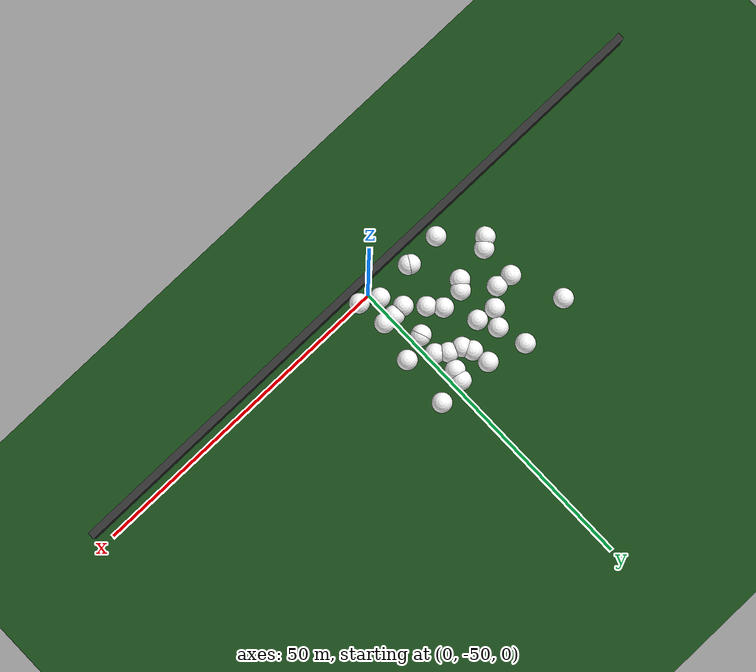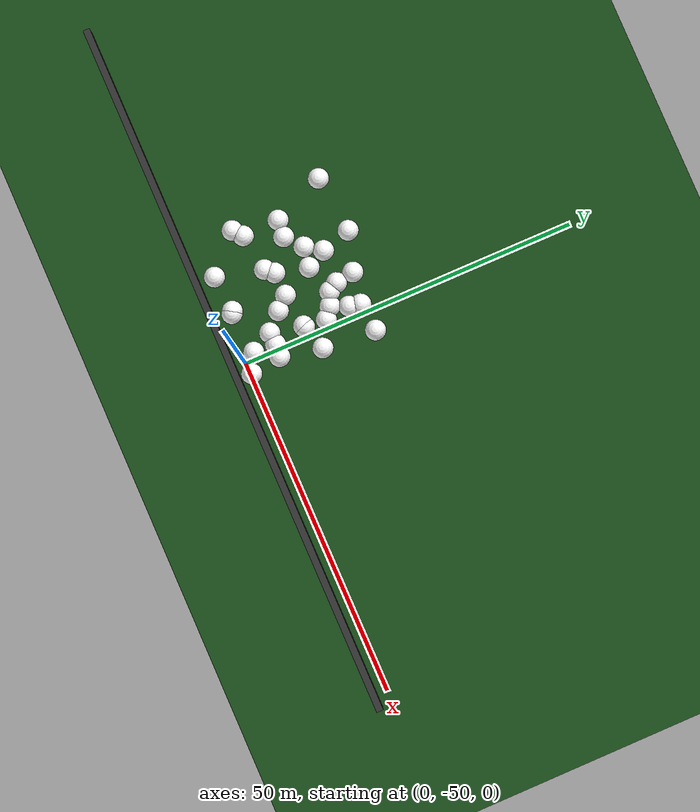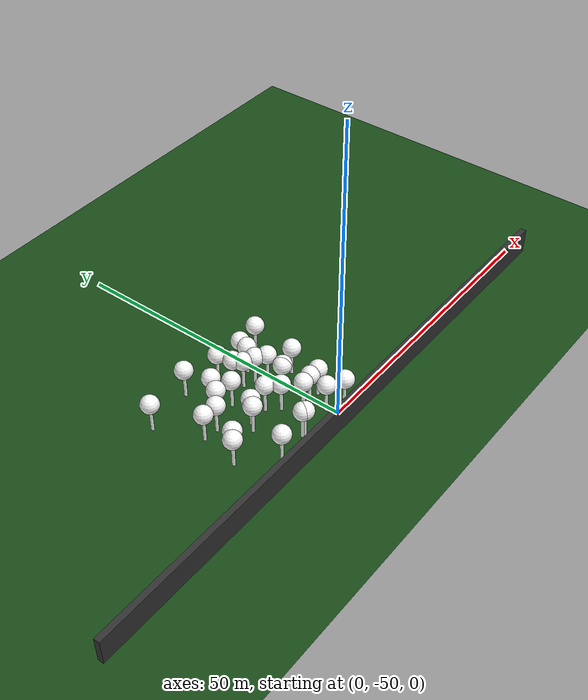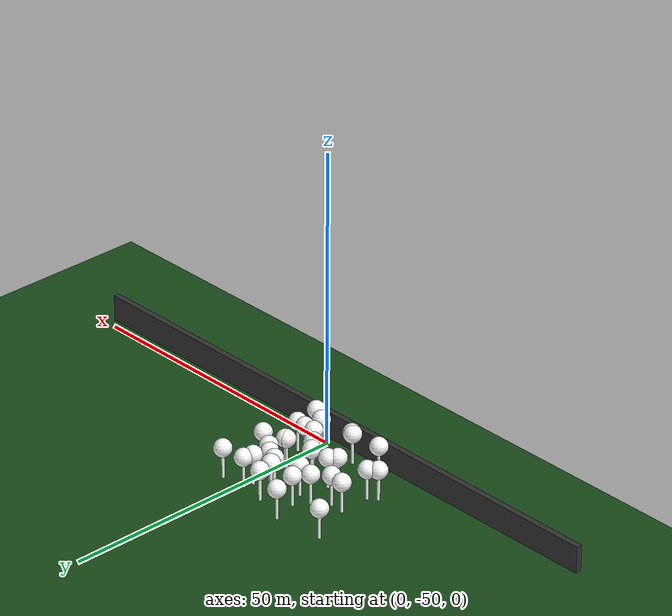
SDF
<sdf version="1.8">
 <world name="forest_world">
  <model name="tree_simple491">
   <static>1</static>
   <link name="link">
    <pose>0 0 0.1 0 -0 0</pose>
    <collision name="collision_trunk">
     <pose>0 0 2 0 -0 0</pose>
     <geometry><cylinder><radius>0.25</radius><length>4</length></cylinder></geometry>
    </collision>
    <collision name="collision_treetop">
     <pose>0 0 5.2 0 -0 0</pose>
     <geometry><sphere><radius>1.5</radius></sphere></geometry>
    </collision>
    <visual name="trunk">
     <pose>0 0 2 0 -0 0</pose>
     <geometry><cylinder><radius>0.25</radius><length>4</length></cylinder></geometry>
     <material>
      <ambient>0.5 0.5 0.5 1</ambient>
      <diffuse>1.0 1.0 1.0 1</diffuse>
      <specular>0.0 0.0 0.0 1</specular>
      <pbr>
       <metal>
        <albedo_map>../worlds/textures/tree_simple_trunk.jpg</albedo_map>
        <metalness>0.0</metalness>
        <roughness>0.8</roughness>
       </metal>
      </pbr>
     </material>
    </visual>
    <visual name="treetop">
     <pose>0 0 5.2 0 -0 0</pose>
     <geometry><sphere><radius>1.5</radius></sphere></geometry>
     <material>
      <ambient>0.5 0.5 0.5 1</ambient>
      <diffuse>1.0 1.0 1.0 1</diffuse>
      <specular>0.0 0.0 0.0 1</specular>
      <pbr>
       <metal>
        <albedo_map>../worlds/textures/tree_simple_treetop.jpg</albedo_map>
        <metalness>0.0</metalness>
        <roughness>0.9</roughness>
       </metal>
      </pbr>
     </material>
    </visual>
   </link>
   <pose>-12.3902503735 -49.1082665042 0 0 -0 0</pose>
  </model>
  <model name="tree_simple458">
   <static>1</static>
   <link name="link">
    <pose>0 0 0.1 0 -0 0</pose>
    <collision name="collision_trunk">
     <pose>0 0 2 0 -0 0</pose>
     <geometry><cylinder><radius>0.25</radius><length>4</length></cylinder></geometry>
    </collision>
    <collision name="collision_treetop">
     <pose>0 0 5.2 0 -0 0</pose>
     <geometry><sphere><radius>1.5</radius></sphere></geometry>
    </collision>
    <visual name="trunk">
     <pose>0 0 2 0 -0 0</pose>
     <geometry><cylinder><radius>0.25</radius><length>4</length></cylinder></geometry>
     <material>
      <ambient>0.5 0.5 0.5 1</ambient>
      <diffuse>1.0 1.0 1.0 1</diffuse>
      <specular>0.0 0.0 0.0 1</specular>
      <pbr>
       <metal>
        <albedo_map>../worlds/textures/tree_simple_trunk.jpg</albedo_map>
        <metalness>0.0</metalness>
        <roughness>0.8</roughness>
       </metal>
      </pbr>
     </material>
    </visual>
    <visual name="treetop">
     <pose>0 0 5.2 0 -0 0</pose>
     <geometry><sphere><radius>1.5</radius></sphere></geometry>
     <material>
      <ambient>0.5 0.5 0.5 1</ambient>
      <diffuse>1.0 1.0 1.0 1</diffuse>
      <specular>0.0 0.0 0.0 1</specular>
      <pbr>
       <metal>
        <albedo_map>../worlds/textures/tree_simple_treetop.jpg</albedo_map>
        <metalness>0.0</metalness>
        <roughness>0.9</roughness>
       </metal>
      </pbr>
     </material>
    </visual>
   </link>
   <pose>2.06613671761 -49.6676263837 0 0 -0 0</pose>
  </model>
  <model name="tree_simple454">
   <static>1</static>
   <link name="link">
    <pose>0 0 0.1 0 -0 0</pose>
    <collision name="collision_trunk">
     <pose>0 0 2 0 -0 0</pose>
     <geometry><cylinder><radius>0.25</radius><length>4</length></cylinder></geometry>
    </collision>
    <collision name="collision_treetop">
     <pose>0 0 5.2 0 -0 0</pose>
     <geometry><sphere><radius>1.5</radius></sphere></geometry>
    </collision>
    <visual name="trunk">
     <pose>0 0 2 0 -0 0</pose>
     <geometry><cylinder><radius>0.25</radius><length>4</length></cylinder></geometry>
     <material>
      <ambient>0.5 0.5 0.5 1</ambient>
      <diffuse>1.0 1.0 1.0 1</diffuse>
      <specular>0.0 0.0 0.0 1</specular>
      <pbr>
       <metal>
        <albedo_map>../worlds/textures/tree_simple_trunk.jpg</albedo_map>
        <metalness>0.0</metalness>
        <roughness>0.8</roughness>
       </metal>
      </pbr>
     </material>
    </visual>
    <visual name="treetop">
     <pose>0 0 5.2 0 -0 0</pose>
     <geometry><sphere><radius>1.5</radius></sphere></geometry>
     <material>
      <ambient>0.5 0.5 0.5 1</ambient>
      <diffuse>1.0 1.0 1.0 1</diffuse>
      <specular>0.0 0.0 0.0 1</specular>
      <pbr>
       <metal>
        <albedo_map>../worlds/textures/tree_simple_treetop.jpg</albedo_map>
        <metalness>0.0</metalness>
        <roughness>0.9</roughness>
       </metal>
      </pbr>
     </material>
    </visual>
   </link>
   <pose>-1.19781681146 -40.4261160925 0 0 -0 0</pose>
  </model>
  <model name="tree_simple447">
   <static>1</static>
   <link name="link">
    <pose>0 0 0.1 0 -0 0</pose>
    <collision name="collision_trunk">
     <pose>0 0 2 0 -0 0</pose>
     <geometry><cylinder><radius>0.25</radius><length>4</length></cylinder></geometry>
    </collision>
    <collision name="collision_treetop">
     <pose>0 0 5.2 0 -0 0</pose>
     <geometry><sphere><radius>1.5</radius></sphere></geometry>
    </collision>
    <visual name="trunk">
     <pose>0 0 2 0 -0 0</pose>
     <geometry><cylinder><radius>0.25</radius><length>4</length></cylinder></geometry>
     <material>
      <ambient>0.5 0.5 0.5 1</ambient>
      <diffuse>1.0 1.0 1.0 1</diffuse>
      <specular>0.0 0.0 0.0 1</specular>
      <pbr>
       <metal>
        <albedo_map>../worlds/textures/tree_simple_trunk.jpg</albedo_map>
        <metalness>0.0</metalness>
        <roughness>0.8</roughness>
       </metal>
      </pbr>
     </material>
    </visual>
    <visual name="treetop">
     <pose>0 0 5.2 0 -0 0</pose>
     <geometry><sphere><radius>1.5</radius></sphere></geometry>
     <material>
      <ambient>0.5 0.5 0.5 1</ambient>
      <diffuse>1.0 1.0 1.0 1</diffuse>
      <specular>0.0 0.0 0.0 1</specular>
      <pbr>
       <metal>
        <albedo_map>../worlds/textures/tree_simple_treetop.jpg</albedo_map>
        <metalness>0.0</metalness>
        <roughness>0.9</roughness>
       </metal>
      </pbr>
     </material>
    </visual>
   </link>
   <pose>-6.1509747219 -41.0422803315 0 0 -0 0</pose>
  </model>
  <model name="tree_simple408">
   <static>1</static>
   <link name="link">
    <pose>0 0 0.1 0 -0 0</pose>
    <collision name="collision_trunk">
     <pose>0 0 2 0 -0 0</pose>
     <geometry><cylinder><radius>0.25</radius><length>4</length></cylinder></geometry>
    </collision>
    <collision name="collision_treetop">
     <pose>0 0 5.2 0 -0 0</pose>
     <geometry><sphere><radius>1.5</radius></sphere></geometry>
    </collision>
    <visual name="trunk">
     <pose>0 0 2 0 -0 0</pose>
     <geometry><cylinder><radius>0.25</radius><length>4</length></cylinder></geometry>
     <material>
      <ambient>0.5 0.5 0.5 1</ambient>
      <diffuse>1.0 1.0 1.0 1</diffuse>
      <specular>0.0 0.0 0.0 1</specular>
      <pbr>
       <metal>
        <albedo_map>../worlds/textures/tree_simple_trunk.jpg</albedo_map>
        <metalness>0.0</metalness>
        <roughness>0.8</roughness>
       </metal>
      </pbr>
     </material>
    </visual>
    <visual name="treetop">
     <pose>0 0 5.2 0 -0 0</pose>
     <geometry><sphere><radius>1.5</radius></sphere></geometry>
     <material>
      <ambient>0.5 0.5 0.5 1</ambient>
      <diffuse>1.0 1.0 1.0 1</diffuse>
      <specular>0.0 0.0 0.0 1</specular>
      <pbr>
       <metal>
        <albedo_map>../worlds/textures/tree_simple_treetop.jpg</albedo_map>
        <metalness>0.0</metalness>
        <roughness>0.9</roughness>
       </metal>
      </pbr>
     </material>
    </visual>
   </link>
   <pose>-16.0994347695 -43.1531583175 0 0 -0 0</pose>
  </model>
  <model name="tree_simple397">
   <static>1</static>
   <link name="link">
    <pose>0 0 0.1 0 -0 0</pose>
    <collision name="collision_trunk">
     <pose>0 0 2 0 -0 0</pose>
     <geometry><cylinder><radius>0.25</radius><length>4</length></cylinder></geometry>
    </collision>
    <collision name="collision_treetop">
     <pose>0 0 5.2 0 -0 0</pose>
     <geometry><sphere><radius>1.5</radius></sphere></geometry>
    </collision>
    <visual name="trunk">
     <pose>0 0 2 0 -0 0</pose>
     <geometry><cylinder><radius>0.25</radius><length>4</length></cylinder></geometry>
     <material>
      <ambient>0.5 0.5 0.5 1</ambient>
      <diffuse>1.0 1.0 1.0 1</diffuse>
      <specular>0.0 0.0 0.0 1</specular>
      <pbr>
       <metal>
        <albedo_map>../worlds/textures/tree_simple_trunk.jpg</albedo_map>
        <metalness>0.0</metalness>
        <roughness>0.8</roughness>
       </metal>
      </pbr>
     </material>
    </visual>
    <visual name="treetop">
     <pose>0 0 5.2 0 -0 0</pose>
     <geometry><sphere><radius>1.5</radius></sphere></geometry>
     <material>
      <ambient>0.5 0.5 0.5 1</ambient>
      <diffuse>1.0 1.0 1.0 1</diffuse>
      <specular>0.0 0.0 0.0 1</specular>
      <pbr>
       <metal>
        <albedo_map>../worlds/textures/tree_simple_treetop.jpg</albedo_map>
        <metalness>0.0</metalness>
        <roughness>0.9</roughness>
       </metal>
      </pbr>
     </material>
    </visual>
   </link>
   <pose>-11.3370979395 -35.9987020926 0 0 -0 0</pose>
  </model>
  <model name="tree_simple382">
   <static>1</static>
   <link name="link">
    <pose>0 0 0.1 0 -0 0</pose>
    <collision name="collision_trunk">
     <pose>0 0 2 0 -0 0</pose>
     <geometry><cylinder><radius>0.25</radius><length>4</length></cylinder></geometry>
    </collision>
    <collision name="collision_treetop">
     <pose>0 0 5.2 0 -0 0</pose>
     <geometry><sphere><radius>1.5</radius></sphere></geometry>
    </collision>
    <visual name="trunk">
     <pose>0 0 2 0 -0 0</pose>
     <geometry><cylinder><radius>0.25</radius><length>4</length></cylinder></geometry>
     <material>
      <ambient>0.5 0.5 0.5 1</ambient>
      <diffuse>1.0 1.0 1.0 1</diffuse>
      <specular>0.0 0.0 0.0 1</specular>
      <pbr>
       <metal>
        <albedo_map>../worlds/textures/tree_simple_trunk.jpg</albedo_map>
        <metalness>0.0</metalness>
        <roughness>0.8</roughness>
       </metal>
      </pbr>
     </material>
    </visual>
    <visual name="treetop">
     <pose>0 0 5.2 0 -0 0</pose>
     <geometry><sphere><radius>1.5</radius></sphere></geometry>
     <material>
      <ambient>0.5 0.5 0.5 1</ambient>
      <diffuse>1.0 1.0 1.0 1</diffuse>
      <specular>0.0 0.0 0.0 1</specular>
      <pbr>
       <metal>
        <albedo_map>../worlds/textures/tree_simple_treetop.jpg</albedo_map>
        <metalness>0.0</metalness>
        <roughness>0.9</roughness>
       </metal>
      </pbr>
     </material>
    </visual>
   </link>
   <pose>-13.7339502639 -38.0385425652 0 0 -0 0</pose>
  </model>
  <model name="tree_simple368">
   <static>1</static>
   <link name="link">
    <pose>0 0 0.1 0 -0 0</pose>
    <collision name="collision_trunk">
     <pose>0 0 2 0 -0 0</pose>
     <geometry><cylinder><radius>0.25</radius><length>4</length></cylinder></geometry>
    </collision>
    <collision name="collision_treetop">
     <pose>0 0 5.2 0 -0 0</pose>
     <geometry><sphere><radius>1.5</radius></sphere></geometry>
    </collision>
    <visual name="trunk">
     <pose>0 0 2 0 -0 0</pose>
     <geometry><cylinder><radius>0.25</radius><length>4</length></cylinder></geometry>
     <material>
      <ambient>0.5 0.5 0.5 1</ambient>
      <diffuse>1.0 1.0 1.0 1</diffuse>
      <specular>0.0 0.0 0.0 1</specular>
      <pbr>
       <metal>
        <albedo_map>../worlds/textures/tree_simple_trunk.jpg</albedo_map>
        <metalness>0.0</metalness>
        <roughness>0.8</roughness>
       </metal>
      </pbr>
     </material>
    </visual>
    <visual name="treetop">
     <pose>0 0 5.2 0 -0 0</pose>
     <geometry><sphere><radius>1.5</radius></sphere></geometry>
     <material>
      <ambient>0.5 0.5 0.5 1</ambient>
      <diffuse>1.0 1.0 1.0 1</diffuse>
      <specular>0.0 0.0 0.0 1</specular>
      <pbr>
       <metal>
        <albedo_map>../worlds/textures/tree_simple_treetop.jpg</albedo_map>
        <metalness>0.0</metalness>
        <roughness>0.9</roughness>
       </metal>
      </pbr>
     </material>
    </visual>
   </link>
   <pose>-2.27490769551 -35.975306792 0 0 -0 0</pose>
  </model>
  <model name="tree_simple344">
   <static>1</static>
   <link name="link">
    <pose>0 0 0.1 0 -0 0</pose>
    <collision name="collision_trunk">
     <pose>0 0 2 0 -0 0</pose>
     <geometry><cylinder><radius>0.25</radius><length>4</length></cylinder></geometry>
    </collision>
    <collision name="collision_treetop">
     <pose>0 0 5.2 0 -0 0</pose>
     <geometry><sphere><radius>1.5</radius></sphere></geometry>
    </collision>
    <visual name="trunk">
     <pose>0 0 2 0 -0 0</pose>
     <geometry><cylinder><radius>0.25</radius><length>4</length></cylinder></geometry>
     <material>
      <ambient>0.5 0.5 0.5 1</ambient>
      <diffuse>1.0 1.0 1.0 1</diffuse>
      <specular>0.0 0.0 0.0 1</specular>
      <pbr>
       <metal>
        <albedo_map>../worlds/textures/tree_simple_trunk.jpg</albedo_map>
        <metalness>0.0</metalness>
        <roughness>0.8</roughness>
       </metal>
      </pbr>
     </material>
    </visual>
    <visual name="treetop">
     <pose>0 0 5.2 0 -0 0</pose>
     <geometry><sphere><radius>1.5</radius></sphere></geometry>
     <material>
      <ambient>0.5 0.5 0.5 1</ambient>
      <diffuse>1.0 1.0 1.0 1</diffuse>
      <specular>0.0 0.0 0.0 1</specular>
      <pbr>
       <metal>
        <albedo_map>../worlds/textures/tree_simple_treetop.jpg</albedo_map>
        <metalness>0.0</metalness>
        <roughness>0.9</roughness>
       </metal>
      </pbr>
     </material>
    </visual>
   </link>
   <pose>-1.01406181855 -40.356708741 0 0 -0 0</pose>
  </model>
  <model name="tree_simple334">
   <static>1</static>
   <link name="link">
    <pose>0 0 0.1 0 -0 0</pose>
    <collision name="collision_trunk">
     <pose>0 0 2 0 -0 0</pose>
     <geometry><cylinder><radius>0.25</radius><length>4</length></cylinder></geometry>
    </collision>
    <collision name="collision_treetop">
     <pose>0 0 5.2 0 -0 0</pose>
     <geometry><sphere><radius>1.5</radius></sphere></geometry>
    </collision>
    <visual name="trunk">
     <pose>0 0 2 0 -0 0</pose>
     <geometry><cylinder><radius>0.25</radius><length>4</length></cylinder></geometry>
     <material>
      <ambient>0.5 0.5 0.5 1</ambient>
      <diffuse>1.0 1.0 1.0 1</diffuse>
      <specular>0.0 0.0 0.0 1</specular>
      <pbr>
       <metal>
        <albedo_map>../worlds/textures/tree_simple_trunk.jpg</albedo_map>
        <metalness>0.0</metalness>
        <roughness>0.8</roughness>
       </metal>
      </pbr>
     </material>
    </visual>
    <visual name="treetop">
     <pose>0 0 5.2 0 -0 0</pose>
     <geometry><sphere><radius>1.5</radius></sphere></geometry>
     <material>
      <ambient>0.5 0.5 0.5 1</ambient>
      <diffuse>1.0 1.0 1.0 1</diffuse>
      <specular>0.0 0.0 0.0 1</specular>
      <pbr>
       <metal>
        <albedo_map>../worlds/textures/tree_simple_treetop.jpg</albedo_map>
        <metalness>0.0</metalness>
        <roughness>0.9</roughness>
       </metal>
      </pbr>
     </material>
    </visual>
   </link>
   <pose>-4.1581298625 -35.2035688942 0 0 -0 0</pose>
  </model>
  <model name="tree_simple305">
   <static>1</static>
   <link name="link">
    <pose>0 0 0.1 0 -0 0</pose>
    <collision name="collision_trunk">
     <pose>0 0 2 0 -0 0</pose>
     <geometry><cylinder><radius>0.25</radius><length>4</length></cylinder></geometry>
    </collision>
    <collision name="collision_treetop">
     <pose>0 0 5.2 0 -0 0</pose>
     <geometry><sphere><radius>1.5</radius></sphere></geometry>
    </collision>
    <visual name="trunk">
     <pose>0 0 2 0 -0 0</pose>
     <geometry><cylinder><radius>0.25</radius><length>4</length></cylinder></geometry>
     <material>
      <ambient>0.5 0.5 0.5 1</ambient>
      <diffuse>1.0 1.0 1.0 1</diffuse>
      <specular>0.0 0.0 0.0 1</specular>
      <pbr>
       <metal>
        <albedo_map>../worlds/textures/tree_simple_trunk.jpg</albedo_map>
        <metalness>0.0</metalness>
        <roughness>0.8</roughness>
       </metal>
      </pbr>
     </material>
    </visual>
    <visual name="treetop">
     <pose>0 0 5.2 0 -0 0</pose>
     <geometry><sphere><radius>1.5</radius></sphere></geometry>
     <material>
      <ambient>0.5 0.5 0.5 1</ambient>
      <diffuse>1.0 1.0 1.0 1</diffuse>
      <specular>0.0 0.0 0.0 1</specular>
      <pbr>
       <metal>
        <albedo_map>../worlds/textures/tree_simple_treetop.jpg</albedo_map>
        <metalness>0.0</metalness>
        <roughness>0.9</roughness>
       </metal>
      </pbr>
     </material>
    </visual>
   </link>
   <pose>-16.2250054706 -37.82270562 0 0 -0 0</pose>
  </model>
  <model name="tree_simple285">
   <static>1</static>
   <link name="link">
    <pose>0 0 0.1 0 -0 0</pose>
    <collision name="collision_trunk">
     <pose>0 0 2 0 -0 0</pose>
     <geometry><cylinder><radius>0.25</radius><length>4</length></cylinder></geometry>
    </collision>
    <collision name="collision_treetop">
     <pose>0 0 5.2 0 -0 0</pose>
     <geometry><sphere><radius>1.5</radius></sphere></geometry>
    </collision>
    <visual name="trunk">
     <pose>0 0 2 0 -0 0</pose>
     <geometry><cylinder><radius>0.25</radius><length>4</length></cylinder></geometry>
     <material>
      <ambient>0.5 0.5 0.5 1</ambient>
      <diffuse>1.0 1.0 1.0 1</diffuse>
      <specular>0.0 0.0 0.0 1</specular>
      <pbr>
       <metal>
        <albedo_map>../worlds/textures/tree_simple_trunk.jpg</albedo_map>
        <metalness>0.0</metalness>
        <roughness>0.8</roughness>
       </metal>
      </pbr>
     </material>
    </visual>
    <visual name="treetop">
     <pose>0 0 5.2 0 -0 0</pose>
     <geometry><sphere><radius>1.5</radius></sphere></geometry>
     <material>
      <ambient>0.5 0.5 0.5 1</ambient>
      <diffuse>1.0 1.0 1.0 1</diffuse>
      <specular>0.0 0.0 0.0 1</specular>
      <pbr>
       <metal>
        <albedo_map>../worlds/textures/tree_simple_treetop.jpg</albedo_map>
        <metalness>0.0</metalness>
        <roughness>0.9</roughness>
       </metal>
      </pbr>
     </material>
    </visual>
   </link>
   <pose>-0.758587547347 -37.1758267931 0 0 -0 0</pose>
  </model>
  <model name="tree_simple257">
   <static>1</static>
   <link name="link">
    <pose>0 0 0.1 0 -0 0</pose>
    <collision name="collision_trunk">
     <pose>0 0 2 0 -0 0</pose>
     <geometry><cylinder><radius>0.25</radius><length>4</length></cylinder></geometry>
    </collision>
    <collision name="collision_treetop">
     <pose>0 0 5.2 0 -0 0</pose>
     <geometry><sphere><radius>1.5</radius></sphere></geometry>
    </collision>
    <visual name="trunk">
     <pose>0 0 2 0 -0 0</pose>
     <geometry><cylinder><radius>0.25</radius><length>4</length></cylinder></geometry>
     <material>
      <ambient>0.5 0.5 0.5 1</ambient>
      <diffuse>1.0 1.0 1.0 1</diffuse>
      <specular>0.0 0.0 0.0 1</specular>
      <pbr>
       <metal>
        <albedo_map>../worlds/textures/tree_simple_trunk.jpg</albedo_map>
        <metalness>0.0</metalness>
        <roughness>0.8</roughness>
       </metal>
      </pbr>
     </material>
    </visual>
    <visual name="treetop">
     <pose>0 0 5.2 0 -0 0</pose>
     <geometry><sphere><radius>1.5</radius></sphere></geometry>
     <material>
      <ambient>0.5 0.5 0.5 1</ambient>
      <diffuse>1.0 1.0 1.0 1</diffuse>
      <specular>0.0 0.0 0.0 1</specular>
      <pbr>
       <metal>
        <albedo_map>../worlds/textures/tree_simple_treetop.jpg</albedo_map>
        <metalness>0.0</metalness>
        <roughness>0.9</roughness>
       </metal>
      </pbr>
     </material>
    </visual>
   </link>
   <pose>-17.4076670765 -44.276485645 0 0 -0 0</pose>
  </model>
  <model name="tree_simple227">
   <static>1</static>
   <link name="link">
    <pose>0 0 0.1 0 -0 0</pose>
    <collision name="collision_trunk">
     <pose>0 0 2 0 -0 0</pose>
     <geometry><cylinder><radius>0.25</radius><length>4</length></cylinder></geometry>
    </collision>
    <collision name="collision_treetop">
     <pose>0 0 5.2 0 -0 0</pose>
     <geometry><sphere><radius>1.5</radius></sphere></geometry>
    </collision>
    <visual name="trunk">
     <pose>0 0 2 0 -0 0</pose>
     <geometry><cylinder><radius>0.25</radius><length>4</length></cylinder></geometry>
     <material>
      <ambient>0.5 0.5 0.5 1</ambient>
      <diffuse>1.0 1.0 1.0 1</diffuse>
      <specular>0.0 0.0 0.0 1</specular>
      <pbr>
       <metal>
        <albedo_map>../worlds/textures/tree_simple_trunk.jpg</albedo_map>
        <metalness>0.0</metalness>
        <roughness>0.8</roughness>
       </metal>
      </pbr>
     </material>
    </visual>
    <visual name="treetop">
     <pose>0 0 5.2 0 -0 0</pose>
     <geometry><sphere><radius>1.5</radius></sphere></geometry>
     <material>
      <ambient>0.5 0.5 0.5 1</ambient>
      <diffuse>1.0 1.0 1.0 1</diffuse>
      <specular>0.0 0.0 0.0 1</specular>
      <pbr>
       <metal>
        <albedo_map>../worlds/textures/tree_simple_treetop.jpg</albedo_map>
        <metalness>0.0</metalness>
        <roughness>0.9</roughness>
       </metal>
      </pbr>
     </material>
    </visual>
   </link>
   <pose>-10.5932066879 -42.3249701995 0 0 -0 0</pose>
  </model>
  <model name="tree_simple223">
   <static>1</static>
   <link name="link">
    <pose>0 0 0.1 0 -0 0</pose>
    <collision name="collision_trunk">
     <pose>0 0 2 0 -0 0</pose>
     <geometry><cylinder><radius>0.25</radius><length>4</length></cylinder></geometry>
    </collision>
    <collision name="collision_treetop">
     <pose>0 0 5.2 0 -0 0</pose>
     <geometry><sphere><radius>1.5</radius></sphere></geometry>
    </collision>
    <visual name="trunk">
     <pose>0 0 2 0 -0 0</pose>
     <geometry><cylinder><radius>0.25</radius><length>4</length></cylinder></geometry>
     <material>
      <ambient>0.5 0.5 0.5 1</ambient>
      <diffuse>1.0 1.0 1.0 1</diffuse>
      <specular>0.0 0.0 0.0 1</specular>
      <pbr>
       <metal>
        <albedo_map>../worlds/textures/tree_simple_trunk.jpg</albedo_map>
        <metalness>0.0</metalness>
        <roughness>0.8</roughness>
       </metal>
      </pbr>
     </material>
    </visual>
    <visual name="treetop">
     <pose>0 0 5.2 0 -0 0</pose>
     <geometry><sphere><radius>1.5</radius></sphere></geometry>
     <material>
      <ambient>0.5 0.5 0.5 1</ambient>
      <diffuse>1.0 1.0 1.0 1</diffuse>
      <specular>0.0 0.0 0.0 1</specular>
      <pbr>
       <metal>
        <albedo_map>../worlds/textures/tree_simple_treetop.jpg</albedo_map>
        <metalness>0.0</metalness>
        <roughness>0.9</roughness>
       </metal>
      </pbr>
     </material>
    </visual>
   </link>
   <pose>-0.831429515675 -31.9083877979 0 0 -0 0</pose>
  </model>
  <model name="tree_simple166">
   <static>1</static>
   <link name="link">
    <pose>0 0 0.1 0 -0 0</pose>
    <collision name="collision_trunk">
     <pose>0 0 2 0 -0 0</pose>
     <geometry><cylinder><radius>0.25</radius><length>4</length></cylinder></geometry>
    </collision>
    <collision name="collision_treetop">
     <pose>0 0 5.2 0 -0 0</pose>
     <geometry><sphere><radius>1.5</radius></sphere></geometry>
    </collision>
    <visual name="trunk">
     <pose>0 0 2 0 -0 0</pose>
     <geometry><cylinder><radius>0.25</radius><length>4</length></cylinder></geometry>
     <material>
      <ambient>0.5 0.5 0.5 1</ambient>
      <diffuse>1.0 1.0 1.0 1</diffuse>
      <specular>0.0 0.0 0.0 1</specular>
      <pbr>
       <metal>
        <albedo_map>../worlds/textures/tree_simple_trunk.jpg</albedo_map>
        <metalness>0.0</metalness>
        <roughness>0.8</roughness>
       </metal>
      </pbr>
     </material>
    </visual>
    <visual name="treetop">
     <pose>0 0 5.2 0 -0 0</pose>
     <geometry><sphere><radius>1.5</radius></sphere></geometry>
     <material>
      <ambient>0.5 0.5 0.5 1</ambient>
      <diffuse>1.0 1.0 1.0 1</diffuse>
      <specular>0.0 0.0 0.0 1</specular>
      <pbr>
       <metal>
        <albedo_map>../worlds/textures/tree_simple_treetop.jpg</albedo_map>
        <metalness>0.0</metalness>
        <roughness>0.9</roughness>
       </metal>
      </pbr>
     </material>
    </visual>
   </link>
   <pose>-19.3381588268 -30.3399867983 0 0 -0 0</pose>
  </model>
  <model name="tree_simple143">
   <static>1</static>
   <link name="link">
    <pose>0 0 0.1 0 -0 0</pose>
    <collision name="collision_trunk">
     <pose>0 0 2 0 -0 0</pose>
     <geometry><cylinder><radius>0.25</radius><length>4</length></cylinder></geometry>
    </collision>
    <collision name="collision_treetop">
     <pose>0 0 5.2 0 -0 0</pose>
     <geometry><sphere><radius>1.5</radius></sphere></geometry>
    </collision>
    <visual name="trunk">
     <pose>0 0 2 0 -0 0</pose>
     <geometry><cylinder><radius>0.25</radius><length>4</length></cylinder></geometry>
     <material>
      <ambient>0.5 0.5 0.5 1</ambient>
      <diffuse>1.0 1.0 1.0 1</diffuse>
      <specular>0.0 0.0 0.0 1</specular>
      <pbr>
       <metal>
        <albedo_map>../worlds/textures/tree_simple_trunk.jpg</albedo_map>
        <metalness>0.0</metalness>
        <roughness>0.8</roughness>
       </metal>
      </pbr>
     </material>
    </visual>
    <visual name="treetop">
     <pose>0 0 5.2 0 -0 0</pose>
     <geometry><sphere><radius>1.5</radius></sphere></geometry>
     <material>
      <ambient>0.5 0.5 0.5 1</ambient>
      <diffuse>1.0 1.0 1.0 1</diffuse>
      <specular>0.0 0.0 0.0 1</specular>
      <pbr>
       <metal>
        <albedo_map>../worlds/textures/tree_simple_treetop.jpg</albedo_map>
        <metalness>0.0</metalness>
        <roughness>0.9</roughness>
       </metal>
      </pbr>
     </material>
    </visual>
   </link>
   <pose>-9.58958340045 -41.1660757416 0 0 -0 0</pose>
  </model>
  <model name="tree_simple142">
   <static>1</static>
   <link name="link">
    <pose>0 0 0.1 0 -0 0</pose>
    <collision name="collision_trunk">
     <pose>0 0 2 0 -0 0</pose>
     <geometry><cylinder><radius>0.25</radius><length>4</length></cylinder></geometry>
    </collision>
    <collision name="collision_treetop">
     <pose>0 0 5.2 0 -0 0</pose>
     <geometry><sphere><radius>1.5</radius></sphere></geometry>
    </collision>
    <visual name="trunk">
     <pose>0 0 2 0 -0 0</pose>
     <geometry><cylinder><radius>0.25</radius><length>4</length></cylinder></geometry>
     <material>
      <ambient>0.5 0.5 0.5 1</ambient>
      <diffuse>1.0 1.0 1.0 1</diffuse>
      <specular>0.0 0.0 0.0 1</specular>
      <pbr>
       <metal>
        <albedo_map>../worlds/textures/tree_simple_trunk.jpg</albedo_map>
        <metalness>0.0</metalness>
        <roughness>0.8</roughness>
       </metal>
      </pbr>
     </material>
    </visual>
    <visual name="treetop">
     <pose>0 0 5.2 0 -0 0</pose>
     <geometry><sphere><radius>1.5</radius></sphere></geometry>
     <material>
      <ambient>0.5 0.5 0.5 1</ambient>
      <diffuse>1.0 1.0 1.0 1</diffuse>
      <specular>0.0 0.0 0.0 1</specular>
      <pbr>
       <metal>
        <albedo_map>../worlds/textures/tree_simple_treetop.jpg</albedo_map>
        <metalness>0.0</metalness>
        <roughness>0.9</roughness>
       </metal>
      </pbr>
     </material>
    </visual>
   </link>
   <pose>2.70227648478 -39.1925835725 0 0 -0 0</pose>
  </model>
  <model name="tree_simple126">
   <static>1</static>
   <link name="link">
    <pose>0 0 0.1 0 -0 0</pose>
    <collision name="collision_trunk">
     <pose>0 0 2 0 -0 0</pose>
     <geometry><cylinder><radius>0.25</radius><length>4</length></cylinder></geometry>
    </collision>
    <collision name="collision_treetop">
     <pose>0 0 5.2 0 -0 0</pose>
     <geometry><sphere><radius>1.5</radius></sphere></geometry>
    </collision>
    <visual name="trunk">
     <pose>0 0 2 0 -0 0</pose>
     <geometry><cylinder><radius>0.25</radius><length>4</length></cylinder></geometry>
     <material>
      <ambient>0.5 0.5 0.5 1</ambient>
      <diffuse>1.0 1.0 1.0 1</diffuse>
      <specular>0.0 0.0 0.0 1</specular>
      <pbr>
       <metal>
        <albedo_map>../worlds/textures/tree_simple_trunk.jpg</albedo_map>
        <metalness>0.0</metalness>
        <roughness>0.8</roughness>
       </metal>
      </pbr>
     </material>
    </visual>
    <visual name="treetop">
     <pose>0 0 5.2 0 -0 0</pose>
     <geometry><sphere><radius>1.5</radius></sphere></geometry>
     <material>
      <ambient>0.5 0.5 0.5 1</ambient>
      <diffuse>1.0 1.0 1.0 1</diffuse>
      <specular>0.0 0.0 0.0 1</specular>
      <pbr>
       <metal>
        <albedo_map>../worlds/textures/tree_simple_treetop.jpg</albedo_map>
        <metalness>0.0</metalness>
        <roughness>0.9</roughness>
       </metal>
      </pbr>
     </material>
    </visual>
   </link>
   <pose>-8.40128153864 -36.4846341971 0 0 -0 0</pose>
  </model>
  <model name="tree_simple114">
   <static>1</static>
   <link name="link">
    <pose>0 0 0.1 0 -0 0</pose>
    <collision name="collision_trunk">
     <pose>0 0 2 0 -0 0</pose>
     <geometry><cylinder><radius>0.25</radius><length>4</length></cylinder></geometry>
    </collision>
    <collision name="collision_treetop">
     <pose>0 0 5.2 0 -0 0</pose>
     <geometry><sphere><radius>1.5</radius></sphere></geometry>
    </collision>
    <visual name="trunk">
     <pose>0 0 2 0 -0 0</pose>
     <geometry><cylinder><radius>0.25</radius><length>4</length></cylinder></geometry>
     <material>
      <ambient>0.5 0.5 0.5 1</ambient>
      <diffuse>1.0 1.0 1.0 1</diffuse>
      <specular>0.0 0.0 0.0 1</specular>
      <pbr>
       <metal>
        <albedo_map>../worlds/textures/tree_simple_trunk.jpg</albedo_map>
        <metalness>0.0</metalness>
        <roughness>0.8</roughness>
       </metal>
      </pbr>
     </material>
    </visual>
    <visual name="treetop">
     <pose>0 0 5.2 0 -0 0</pose>
     <geometry><sphere><radius>1.5</radius></sphere></geometry>
     <material>
      <ambient>0.5 0.5 0.5 1</ambient>
      <diffuse>1.0 1.0 1.0 1</diffuse>
      <specular>0.0 0.0 0.0 1</specular>
      <pbr>
       <metal>
        <albedo_map>../worlds/textures/tree_simple_treetop.jpg</albedo_map>
        <metalness>0.0</metalness>
        <roughness>0.9</roughness>
       </metal>
      </pbr>
     </material>
    </visual>
   </link>
   <pose>-2.17757547104 -45.1286714355 0 0 -0 0</pose>
  </model>
  <model name="tree_simple108">
   <static>1</static>
   <link name="link">
    <pose>0 0 0.1 0 -0 0</pose>
    <collision name="collision_trunk">
     <pose>0 0 2 0 -0 0</pose>
     <geometry><cylinder><radius>0.25</radius><length>4</length></cylinder></geometry>
    </collision>
    <collision name="collision_treetop">
     <pose>0 0 5.2 0 -0 0</pose>
     <geometry><sphere><radius>1.5</radius></sphere></geometry>
    </collision>
    <visual name="trunk">
     <pose>0 0 2 0 -0 0</pose>
     <geometry><cylinder><radius>0.25</radius><length>4</length></cylinder></geometry>
     <material>
      <ambient>0.5 0.5 0.5 1</ambient>
      <diffuse>1.0 1.0 1.0 1</diffuse>
      <specular>0.0 0.0 0.0 1</specular>
      <pbr>
       <metal>
        <albedo_map>../worlds/textures/tree_simple_trunk.jpg</albedo_map>
        <metalness>0.0</metalness>
        <roughness>0.8</roughness>
       </metal>
      </pbr>
     </material>
    </visual>
    <visual name="treetop">
     <pose>0 0 5.2 0 -0 0</pose>
     <geometry><sphere><radius>1.5</radius></sphere></geometry>
     <material>
      <ambient>0.5 0.5 0.5 1</ambient>
      <diffuse>1.0 1.0 1.0 1</diffuse>
      <specular>0.0 0.0 0.0 1</specular>
      <pbr>
       <metal>
        <albedo_map>../worlds/textures/tree_simple_treetop.jpg</albedo_map>
        <metalness>0.0</metalness>
        <roughness>0.9</roughness>
       </metal>
      </pbr>
     </material>
    </visual>
   </link>
   <pose>1.42931989254 -45.1660279448 0 0 -0 0</pose>
  </model>
  <model name="tree_simple107">
   <static>1</static>
   <link name="link">
    <pose>0 0 0.1 0 -0 0</pose>
    <collision name="collision_trunk">
     <pose>0 0 2 0 -0 0</pose>
     <geometry><cylinder><radius>0.25</radius><length>4</length></cylinder></geometry>
    </collision>
    <collision name="collision_treetop">
     <pose>0 0 5.2 0 -0 0</pose>
     <geometry><sphere><radius>1.5</radius></sphere></geometry>
    </collision>
    <visual name="trunk">
     <pose>0 0 2 0 -0 0</pose>
     <geometry><cylinder><radius>0.25</radius><length>4</length></cylinder></geometry>
     <material>
      <ambient>0.5 0.5 0.5 1</ambient>
      <diffuse>1.0 1.0 1.0 1</diffuse>
      <specular>0.0 0.0 0.0 1</specular>
      <pbr>
       <metal>
        <albedo_map>../worlds/textures/tree_simple_trunk.jpg</albedo_map>
        <metalness>0.0</metalness>
        <roughness>0.8</roughness>
       </metal>
      </pbr>
     </material>
    </visual>
    <visual name="treetop">
     <pose>0 0 5.2 0 -0 0</pose>
     <geometry><sphere><radius>1.5</radius></sphere></geometry>
     <material>
      <ambient>0.5 0.5 0.5 1</ambient>
      <diffuse>1.0 1.0 1.0 1</diffuse>
      <specular>0.0 0.0 0.0 1</specular>
      <pbr>
       <metal>
        <albedo_map>../worlds/textures/tree_simple_treetop.jpg</albedo_map>
        <metalness>0.0</metalness>
        <roughness>0.9</roughness>
       </metal>
      </pbr>
     </material>
    </visual>
   </link>
   <pose>-1.23057164025 -33.5425651467 0 0 -0 0</pose>
  </model>
  <model name="tree_simple102">
   <static>1</static>
   <link name="link">
    <pose>0 0 0.1 0 -0 0</pose>
    <collision name="collision_trunk">
     <pose>0 0 2 0 -0 0</pose>
     <geometry><cylinder><radius>0.25</radius><length>4</length></cylinder></geometry>
    </collision>
    <collision name="collision_treetop">
     <pose>0 0 5.2 0 -0 0</pose>
     <geometry><sphere><radius>1.5</radius></sphere></geometry>
    </collision>
    <visual name="trunk">
     <pose>0 0 2 0 -0 0</pose>
     <geometry><cylinder><radius>0.25</radius><length>4</length></cylinder></geometry>
     <material>
      <ambient>0.5 0.5 0.5 1</ambient>
      <diffuse>1.0 1.0 1.0 1</diffuse>
      <specular>0.0 0.0 0.0 1</specular>
      <pbr>
       <metal>
        <albedo_map>../worlds/textures/tree_simple_trunk.jpg</albedo_map>
        <metalness>0.0</metalness>
        <roughness>0.8</roughness>
       </metal>
      </pbr>
     </material>
    </visual>
    <visual name="treetop">
     <pose>0 0 5.2 0 -0 0</pose>
     <geometry><sphere><radius>1.5</radius></sphere></geometry>
     <material>
      <ambient>0.5 0.5 0.5 1</ambient>
      <diffuse>1.0 1.0 1.0 1</diffuse>
      <specular>0.0 0.0 0.0 1</specular>
      <pbr>
       <metal>
        <albedo_map>../worlds/textures/tree_simple_treetop.jpg</albedo_map>
        <metalness>0.0</metalness>
        <roughness>0.9</roughness>
       </metal>
      </pbr>
     </material>
    </visual>
   </link>
   <pose>-9.77870020383 -33.6944059178 0 0 -0 0</pose>
  </model>
  <model name="tree_simple90">
   <static>1</static>
   <link name="link">
    <pose>0 0 0.1 0 -0 0</pose>
    <collision name="collision_trunk">
     <pose>0 0 2 0 -0 0</pose>
     <geometry><cylinder><radius>0.25</radius><length>4</length></cylinder></geometry>
    </collision>
    <collision name="collision_treetop">
     <pose>0 0 5.2 0 -0 0</pose>
     <geometry><sphere><radius>1.5</radius></sphere></geometry>
    </collision>
    <visual name="trunk">
     <pose>0 0 2 0 -0 0</pose>
     <geometry><cylinder><radius>0.25</radius><length>4</length></cylinder></geometry>
     <material>
      <ambient>0.5 0.5 0.5 1</ambient>
      <diffuse>1.0 1.0 1.0 1</diffuse>
      <specular>0.0 0.0 0.0 1</specular>
      <pbr>
       <metal>
        <albedo_map>../worlds/textures/tree_simple_trunk.jpg</albedo_map>
        <metalness>0.0</metalness>
        <roughness>0.8</roughness>
       </metal>
      </pbr>
     </material>
    </visual>
    <visual name="treetop">
     <pose>0 0 5.2 0 -0 0</pose>
     <geometry><sphere><radius>1.5</radius></sphere></geometry>
     <material>
      <ambient>0.5 0.5 0.5 1</ambient>
      <diffuse>1.0 1.0 1.0 1</diffuse>
      <specular>0.0 0.0 0.0 1</specular>
      <pbr>
       <metal>
        <albedo_map>../worlds/textures/tree_simple_treetop.jpg</albedo_map>
        <metalness>0.0</metalness>
        <roughness>0.9</roughness>
       </metal>
      </pbr>
     </material>
    </visual>
   </link>
   <pose>-7.02064767481 -48.7132309456 0 0 -0 0</pose>
  </model>
  <model name="tree_simple87">
   <static>1</static>
   <link name="link">
    <pose>0 0 0.1 0 -0 0</pose>
    <collision name="collision_trunk">
     <pose>0 0 2 0 -0 0</pose>
     <geometry><cylinder><radius>0.25</radius><length>4</length></cylinder></geometry>
    </collision>
    <collision name="collision_treetop">
     <pose>0 0 5.2 0 -0 0</pose>
     <geometry><sphere><radius>1.5</radius></sphere></geometry>
    </collision>
    <visual name="trunk">
     <pose>0 0 2 0 -0 0</pose>
     <geometry><cylinder><radius>0.25</radius><length>4</length></cylinder></geometry>
     <material>
      <ambient>0.5 0.5 0.5 1</ambient>
      <diffuse>1.0 1.0 1.0 1</diffuse>
      <specular>0.0 0.0 0.0 1</specular>
      <pbr>
       <metal>
        <albedo_map>../worlds/textures/tree_simple_trunk.jpg</albedo_map>
        <metalness>0.0</metalness>
        <roughness>0.8</roughness>
       </metal>
      </pbr>
     </material>
    </visual>
    <visual name="treetop">
     <pose>0 0 5.2 0 -0 0</pose>
     <geometry><sphere><radius>1.5</radius></sphere></geometry>
     <material>
      <ambient>0.5 0.5 0.5 1</ambient>
      <diffuse>1.0 1.0 1.0 1</diffuse>
      <specular>0.0 0.0 0.0 1</specular>
      <pbr>
       <metal>
        <albedo_map>../worlds/textures/tree_simple_treetop.jpg</albedo_map>
        <metalness>0.0</metalness>
        <roughness>0.9</roughness>
       </metal>
      </pbr>
     </material>
    </visual>
   </link>
   <pose>-0.355859953676 -45.0259101281 0 0 -0 0</pose>
  </model>
  <model name="tree_simple58">
   <static>1</static>
   <link name="link">
    <pose>0 0 0.1 0 -0 0</pose>
    <collision name="collision_trunk">
     <pose>0 0 2 0 -0 0</pose>
     <geometry><cylinder><radius>0.25</radius><length>4</length></cylinder></geometry>
    </collision>
    <collision name="collision_treetop">
     <pose>0 0 5.2 0 -0 0</pose>
     <geometry><sphere><radius>1.5</radius></sphere></geometry>
    </collision>
    <visual name="trunk">
     <pose>0 0 2 0 -0 0</pose>
     <geometry><cylinder><radius>0.25</radius><length>4</length></cylinder></geometry>
     <material>
      <ambient>0.5 0.5 0.5 1</ambient>
      <diffuse>1.0 1.0 1.0 1</diffuse>
      <specular>0.0 0.0 0.0 1</specular>
      <pbr>
       <metal>
        <albedo_map>../worlds/textures/tree_simple_trunk.jpg</albedo_map>
        <metalness>0.0</metalness>
        <roughness>0.8</roughness>
       </metal>
      </pbr>
     </material>
    </visual>
    <visual name="treetop">
     <pose>0 0 5.2 0 -0 0</pose>
     <geometry><sphere><radius>1.5</radius></sphere></geometry>
     <material>
      <ambient>0.5 0.5 0.5 1</ambient>
      <diffuse>1.0 1.0 1.0 1</diffuse>
      <specular>0.0 0.0 0.0 1</specular>
      <pbr>
       <metal>
        <albedo_map>../worlds/textures/tree_simple_treetop.jpg</albedo_map>
        <metalness>0.0</metalness>
        <roughness>0.9</roughness>
       </metal>
      </pbr>
     </material>
    </visual>
   </link>
   <pose>-4.91491945588 -33.8245636998 0 0 -0 0</pose>
  </model>
  <model name="tree_simple51">
   <static>1</static>
   <link name="link">
    <pose>0 0 0.1 0 -0 0</pose>
    <collision name="collision_trunk">
     <pose>0 0 2 0 -0 0</pose>
     <geometry><cylinder><radius>0.25</radius><length>4</length></cylinder></geometry>
    </collision>
    <collision name="collision_treetop">
     <pose>0 0 5.2 0 -0 0</pose>
     <geometry><sphere><radius>1.5</radius></sphere></geometry>
    </collision>
    <visual name="trunk">
     <pose>0 0 2 0 -0 0</pose>
     <geometry><cylinder><radius>0.25</radius><length>4</length></cylinder></geometry>
     <material>
      <ambient>0.5 0.5 0.5 1</ambient>
      <diffuse>1.0 1.0 1.0 1</diffuse>
      <specular>0.0 0.0 0.0 1</specular>
      <pbr>
       <metal>
        <albedo_map>../worlds/textures/tree_simple_trunk.jpg</albedo_map>
        <metalness>0.0</metalness>
        <roughness>0.8</roughness>
       </metal>
      </pbr>
     </material>
    </visual>
    <visual name="treetop">
     <pose>0 0 5.2 0 -0 0</pose>
     <geometry><sphere><radius>1.5</radius></sphere></geometry>
     <material>
      <ambient>0.5 0.5 0.5 1</ambient>
      <diffuse>1.0 1.0 1.0 1</diffuse>
      <specular>0.0 0.0 0.0 1</specular>
      <pbr>
       <metal>
        <albedo_map>../worlds/textures/tree_simple_treetop.jpg</albedo_map>
        <metalness>0.0</metalness>
        <roughness>0.9</roughness>
       </metal>
      </pbr>
     </material>
    </visual>
   </link>
   <pose>-0.589457780756 -48.2328311378 0 0 -0 0</pose>
  </model>
  <model name="tree_simple50">
   <static>1</static>
   <link name="link">
    <pose>0 0 0.1 0 -0 0</pose>
    <collision name="collision_trunk">
     <pose>0 0 2 0 -0 0</pose>
     <geometry><cylinder><radius>0.25</radius><length>4</length></cylinder></geometry>
    </collision>
    <collision name="collision_treetop">
     <pose>0 0 5.2 0 -0 0</pose>
     <geometry><sphere><radius>1.5</radius></sphere></geometry>
    </collision>
    <visual name="trunk">
     <pose>0 0 2 0 -0 0</pose>
     <geometry><cylinder><radius>0.25</radius><length>4</length></cylinder></geometry>
     <material>
      <ambient>0.5 0.5 0.5 1</ambient>
      <diffuse>1.0 1.0 1.0 1</diffuse>
      <specular>0.0 0.0 0.0 1</specular>
      <pbr>
       <metal>
        <albedo_map>../worlds/textures/tree_simple_trunk.jpg</albedo_map>
        <metalness>0.0</metalness>
        <roughness>0.8</roughness>
       </metal>
      </pbr>
     </material>
    </visual>
    <visual name="treetop">
     <pose>0 0 5.2 0 -0 0</pose>
     <geometry><sphere><radius>1.5</radius></sphere></geometry>
     <material>
      <ambient>0.5 0.5 0.5 1</ambient>
      <diffuse>1.0 1.0 1.0 1</diffuse>
      <specular>0.0 0.0 0.0 1</specular>
      <pbr>
       <metal>
        <albedo_map>../worlds/textures/tree_simple_treetop.jpg</albedo_map>
        <metalness>0.0</metalness>
        <roughness>0.9</roughness>
       </metal>
      </pbr>
     </material>
    </visual>
   </link>
   <pose>-11.0023085291 -29.4422071398 0 0 -0 0</pose>
  </model>
  <model name="tree_simple39">
   <static>1</static>
   <link name="link">
    <pose>0 0 0.1 0 -0 0</pose>
    <collision name="collision_trunk">
     <pose>0 0 2 0 -0 0</pose>
     <geometry><cylinder><radius>0.25</radius><length>4</length></cylinder></geometry>
    </collision>
    <collision name="collision_treetop">
     <pose>0 0 5.2 0 -0 0</pose>
     <geometry><sphere><radius>1.5</radius></sphere></geometry>
    </collision>
    <visual name="trunk">
     <pose>0 0 2 0 -0 0</pose>
     <geometry><cylinder><radius>0.25</radius><length>4</length></cylinder></geometry>
     <material>
      <ambient>0.5 0.5 0.5 1</ambient>
      <diffuse>1.0 1.0 1.0 1</diffuse>
      <specular>0.0 0.0 0.0 1</specular>
      <pbr>
       <metal>
        <albedo_map>../worlds/textures/tree_simple_trunk.jpg</albedo_map>
        <metalness>0.0</metalness>
        <roughness>0.8</roughness>
       </metal>
      </pbr>
     </material>
    </visual>
    <visual name="treetop">
     <pose>0 0 5.2 0 -0 0</pose>
     <geometry><sphere><radius>1.5</radius></sphere></geometry>
     <material>
      <ambient>0.5 0.5 0.5 1</ambient>
      <diffuse>1.0 1.0 1.0 1</diffuse>
      <specular>0.0 0.0 0.0 1</specular>
      <pbr>
       <metal>
        <albedo_map>../worlds/textures/tree_simple_treetop.jpg</albedo_map>
        <metalness>0.0</metalness>
        <roughness>0.9</roughness>
       </metal>
      </pbr>
     </material>
    </visual>
   </link>
   <pose>3.31871539321 -31.4823750144 0 0 -0 0</pose>
  </model>
  <model name="tree_simple23">
   <static>1</static>
   <link name="link">
    <pose>0 0 0.1 0 -0 0</pose>
    <collision name="collision_trunk">
     <pose>0 0 2 0 -0 0</pose>
     <geometry><cylinder><radius>0.25</radius><length>4</length></cylinder></geometry>
    </collision>
    <collision name="collision_treetop">
     <pose>0 0 5.2 0 -0 0</pose>
     <geometry><sphere><radius>1.5</radius></sphere></geometry>
    </collision>
    <visual name="trunk">
     <pose>0 0 2 0 -0 0</pose>
     <geometry><cylinder><radius>0.25</radius><length>4</length></cylinder></geometry>
     <material>
      <ambient>0.5 0.5 0.5 1</ambient>
      <diffuse>1.0 1.0 1.0 1</diffuse>
      <specular>0.0 0.0 0.0 1</specular>
      <pbr>
       <metal>
        <albedo_map>../worlds/textures/tree_simple_trunk.jpg</albedo_map>
        <metalness>0.0</metalness>
        <roughness>0.8</roughness>
       </metal>
      </pbr>
     </material>
    </visual>
    <visual name="treetop">
     <pose>0 0 5.2 0 -0 0</pose>
     <geometry><sphere><radius>1.5</radius></sphere></geometry>
     <material>
      <ambient>0.5 0.5 0.5 1</ambient>
      <diffuse>1.0 1.0 1.0 1</diffuse>
      <specular>0.0 0.0 0.0 1</specular>
      <pbr>
       <metal>
        <albedo_map>../worlds/textures/tree_simple_treetop.jpg</albedo_map>
        <metalness>0.0</metalness>
        <roughness>0.9</roughness>
       </metal>
      </pbr>
     </material>
    </visual>
   </link>
   <pose>-6.72422340922 -48.8953285145 0 0 -0 0</pose>
  </model>
  <model name="tree_simple10">
   <static>1</static>
   <link name="link">
    <pose>0 0 0.1 0 -0 0</pose>
    <collision name="collision_trunk">
     <pose>0 0 2 0 -0 0</pose>
     <geometry><cylinder><radius>0.25</radius><length>4</length></cylinder></geometry>
    </collision>
    <collision name="collision_treetop">
     <pose>0 0 5.2 0 -0 0</pose>
     <geometry><sphere><radius>1.5</radius></sphere></geometry>
    </collision>
    <visual name="trunk">
     <pose>0 0 2 0 -0 0</pose>
     <geometry><cylinder><radius>0.25</radius><length>4</length></cylinder></geometry>
     <material>
      <ambient>0.5 0.5 0.5 1</ambient>
      <diffuse>1.0 1.0 1.0 1</diffuse>
      <specular>0.0 0.0 0.0 1</specular>
      <pbr>
       <metal>
        <albedo_map>../worlds/textures/tree_simple_trunk.jpg</albedo_map>
        <metalness>0.0</metalness>
        <roughness>0.8</roughness>
       </metal>
      </pbr>
     </material>
    </visual>
    <visual name="treetop">
     <pose>0 0 5.2 0 -0 0</pose>
     <geometry><sphere><radius>1.5</radius></sphere></geometry>
     <material>
      <ambient>0.5 0.5 0.5 1</ambient>
      <diffuse>1.0 1.0 1.0 1</diffuse>
      <specular>0.0 0.0 0.0 1</specular>
      <pbr>
       <metal>
        <albedo_map>../worlds/textures/tree_simple_treetop.jpg</albedo_map>
        <metalness>0.0</metalness>
        <roughness>0.9</roughness>
       </metal>
      </pbr>
     </material>
    </visual>
   </link>
   <pose>-5.37126893009 -31.1523453125 0 0 -0 0</pose>
  </model>
  <model name="tree_simple4">
   <static>1</static>
   <link name="link">
    <pose>0 0 0.1 0 -0 0</pose>
    <collision name="collision_trunk">
     <pose>0 0 2 0 -0 0</pose>
     <geometry><cylinder><radius>0.25</radius><length>4</length></cylinder></geometry>
    </collision>
    <collision name="collision_treetop">
     <pose>0 0 5.2 0 -0 0</pose>
     <geometry><sphere><radius>1.5</radius></sphere></geometry>
    </collision>
    <visual name="trunk">
     <pose>0 0 2 0 -0 0</pose>
     <geometry><cylinder><radius>0.25</radius><length>4</length></cylinder></geometry>
     <material>
      <ambient>0.5 0.5 0.5 1</ambient>
      <diffuse>1.0 1.0 1.0 1</diffuse>
      <specular>0.0 0.0 0.0 1</specular>
      <pbr>
       <metal>
        <albedo_map>../worlds/textures/tree_simple_trunk.jpg</albedo_map>
        <metalness>0.0</metalness>
        <roughness>0.8</roughness>
       </metal>
      </pbr>
     </material>
    </visual>
    <visual name="treetop">
     <pose>0 0 5.2 0 -0 0</pose>
     <geometry><sphere><radius>1.5</radius></sphere></geometry>
     <material>
      <ambient>0.5 0.5 0.5 1</ambient>
      <diffuse>1.0 1.0 1.0 1</diffuse>
      <specular>0.0 0.0 0.0 1</specular>
      <pbr>
       <metal>
        <albedo_map>../worlds/textures/tree_simple_treetop.jpg</albedo_map>
        <metalness>0.0</metalness>
        <roughness>0.9</roughness>
       </metal>
      </pbr>
     </material>
    </visual>
   </link>
   <pose>-4.53333118385 -42.8142187994 0 0 -0 0</pose>
  </model>
  <model name="ground_plane">
   <static>true</static>
   <link name="link">
    <collision name="collision">
     <geometry><mesh><uri>../worlds/textures/grass_plane.dae</uri><scale>1 1 1</scale></mesh></geometry>
     <surface><friction><ode><mu>1</mu><mu2>1</mu2></ode></friction></surface>
    </collision>
    <visual name="snow">
     <cast_shadows>false</cast_shadows>
     <geometry><mesh><uri>../worlds/textures/grass_plane.dae</uri><scale>1 1 1</scale></mesh></geometry>
     <material>
      <ambient>0.05 0.2 0.05 1</ambient>
      <diffuse>0.1 0.3 0.1 1</diffuse>
      <specular>0.05 0.05 0.05 1</specular>
     </material>
    </visual>
   </link>
  </model>
  <model name="wall_south">
   <static>true</static>
   <pose>0 -51.9 2 0 0 0</pose>
   <link name="link">
    <collision name="collision"><geometry><box><size>103.7 1 5</size></box></geometry></collision>
    <visual name="visual">
     <geometry><box><size>103.7 1 5</size></box></geometry>
     <material><ambient>0.2 0.2 0.2 1</ambient><diffuse>0.2 0.2 0.2 1</diffuse></material>
    </visual>
   </link>
  </model>
 </world>
</sdf>
